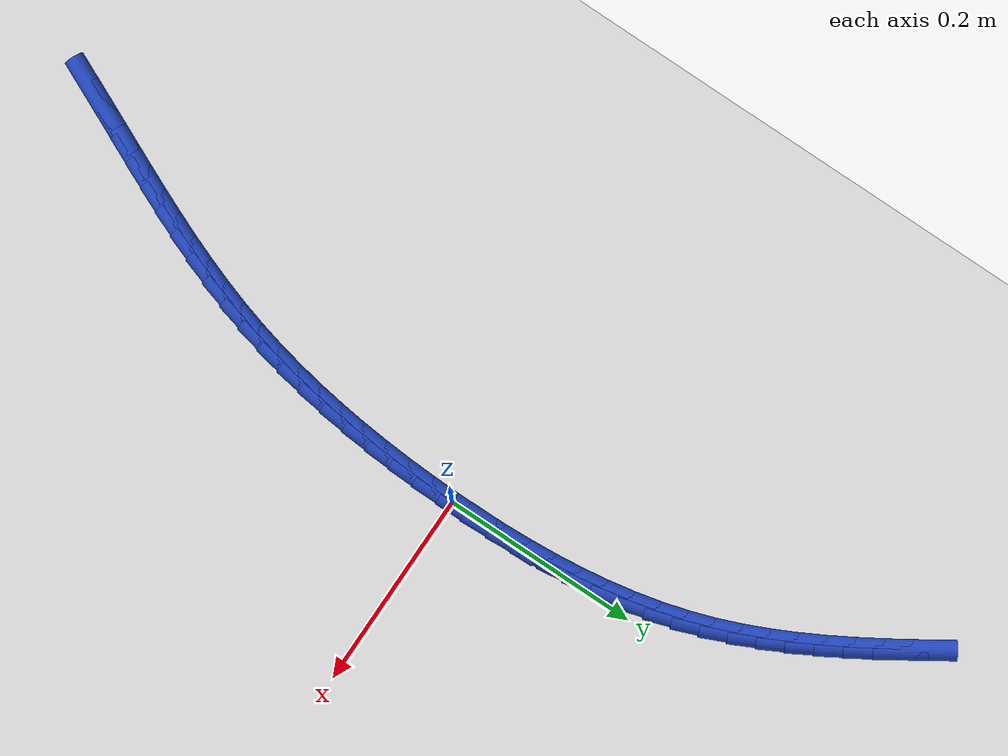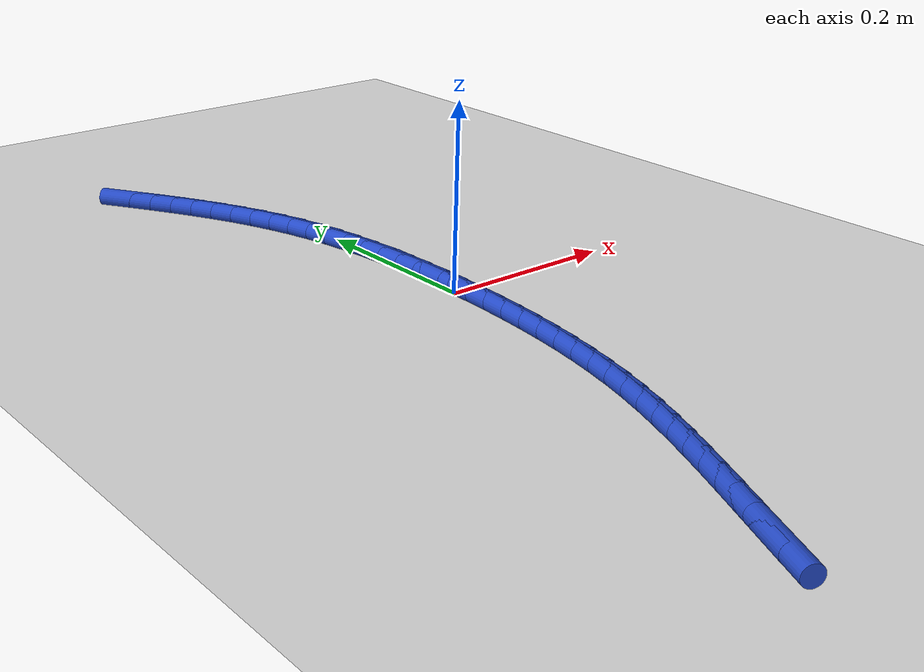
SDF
<sdf version="1.6">
 <world name="default">
  <model name="ground_plane">
   <static>1</static>
   <link name="link">
    <collision name="collision">
     <geometry><plane><normal>0 0 1</normal><size>100 100</size></plane></geometry>
     <surface><friction><ode><mu>100</mu><mu2>50</mu2></ode></friction></surface>
    </collision>
    <visual name="visual">
     <cast_shadows>0</cast_shadows>
     <geometry><plane><normal>0 0 1</normal><size>100 100</size></plane></geometry>
     <material>
      <script><uri>file://media/materials/scripts/gazebo.material</uri><name>Gazebo/WhiteGlow</name></script>
     </material>
    </visual>
   </link>
  </model>
  <model name="line">
   <link name="link_0">
    <pose>-7.37257477290143e-18 3.469446951953614e-17 0.01 0 1.57 1.570679695974858</pose>
    <collision name="collision">
     <geometry><cylinder><radius>0.01</radius><length>0.08</length></cylinder></geometry>
    </collision>
    <visual name="visual">
     <material>
      <script><name>Gazebo/Blue</name><uri>file://media/materials/scripts/gazebo.material</uri></script>
     </material>
     <geometry><cylinder><radius>0.01</radius><length>0.08</length></cylinder></geometry>
    </visual>
   </link>
   <link name="link_1">
    <pose>3.250097629793035e-06 0.027866541742451803 0.01 0 1.57 -1.5481850060267832</pose>
    <collision name="collision">
     <geometry><cylinder><radius>0.01</radius><length>0.08</length></cylinder></geometry>
    </collision>
    <visual name="visual">
     <material>
      <script><name>Gazebo/Blue</name><uri>file://media/materials/scripts/gazebo.material</uri></script>
     </material>
     <geometry><cylinder><radius>0.01</radius><length>0.08</length></cylinder></geometry>
    </visual>
   </link>
   <link name="link_2">
    <pose>-0.0006263920770606841 0.05570812036526805 0.01 0 1.57 -1.5224213287298272</pose>
    <collision name="collision">
     <geometry><cylinder><radius>0.01</radius><length>0.08</length></cylinder></geometry>
    </collision>
    <visual name="visual">
     <material>
      <script><name>Gazebo/Blue</name><uri>file://media/materials/scripts/gazebo.material</uri></script>
     </material>
     <geometry><cylinder><radius>0.01</radius><length>0.08</length></cylinder></geometry>
    </visual>
   </link>
   <link name="link_3">
    <pose>-0.0019702294024981047 0.08346603167380513 0.01 0 1.57 -1.4934822107434715</pose>
    <collision name="collision">
     <geometry><cylinder><radius>0.01</radius><length>0.08</length></cylinder></geometry>
    </collision>
    <visual name="visual">
     <material>
      <script><name>Gazebo/Blue</name><uri>file://media/materials/scripts/gazebo.material</uri></script>
     </material>
     <geometry><cylinder><radius>0.01</radius><length>0.08</length></cylinder></geometry>
    </visual>
   </link>
   <link name="link_4">
    <pose>-0.004109564757109139 0.11108157147341934 0.01 0 1.57 -1.461217150091305</pose>
    <collision name="collision">
     <geometry><cylinder><radius>0.01</radius><length>0.08</length></cylinder></geometry>
    </collision>
    <visual name="visual">
     <material>
      <script><name>Gazebo/Blue</name><uri>file://media/materials/scripts/gazebo.material</uri></script>
     </material>
     <geometry><cylinder><radius>0.01</radius><length>0.08</length></cylinder></geometry>
    </visual>
   </link>
   <link name="link_5">
    <pose>-0.007125701019320453 0.13849603556946702 0.01 0 1.57 -1.425472477816047</pose>
    <collision name="collision">
     <geometry><cylinder><radius>0.01</radius><length>0.08</length></cylinder></geometry>
    </collision>
    <visual name="visual">
     <material>
      <script><name>Gazebo/Blue</name><uri>file://media/materials/scripts/gazebo.material</uri></script>
     </material>
     <geometry><cylinder><radius>0.01</radius><length>0.08</length></cylinder></geometry>
    </visual>
   </link>
   <link name="link_6">
    <pose>-0.011099941067558721 0.16565071976730453 0.01 0 1.57 -1.3861014814704375</pose>
    <collision name="collision">
     <geometry><cylinder><radius>0.01</radius><length>0.08</length></cylinder></geometry>
    </collision>
    <visual name="visual">
     <material>
      <script><name>Gazebo/Blue</name><uri>file://media/materials/scripts/gazebo.material</uri></script>
     </material>
     <geometry><cylinder><radius>0.01</radius><length>0.08</length></cylinder></geometry>
    </visual>
   </link>
   <link name="link_7">
    <pose>-0.016113587780250602 0.19248691987228828 0.01 0 1.57 -1.3429775391351089</pose>
    <collision name="collision">
     <geometry><cylinder><radius>0.01</radius><length>0.08</length></cylinder></geometry>
    </collision>
    <visual name="visual">
     <material>
      <script><name>Gazebo/Blue</name><uri>file://media/materials/scripts/gazebo.material</uri></script>
     </material>
     <geometry><cylinder><radius>0.01</radius><length>0.08</length></cylinder></geometry>
    </visual>
   </link>
   <link name="link_8">
    <pose>-0.02224794403582276 0.21894593168977436 0.01 0 1.57 -1.296010558039404</pose>
    <collision name="collision">
     <geometry><cylinder><radius>0.01</radius><length>0.08</length></cylinder></geometry>
    </collision>
    <visual name="visual">
     <material>
      <script><name>Gazebo/Blue</name><uri>file://media/materials/scripts/gazebo.material</uri></script>
     </material>
     <geometry><cylinder><radius>0.01</radius><length>0.08</length></cylinder></geometry>
    </visual>
   </link>
   <link name="link_9">
    <pose>-0.029584312712701878 0.2449690510251194 0.01 0 1.57 -1.2453110199539499</pose>
    <collision name="collision">
     <geometry><cylinder><radius>0.01</radius><length>0.08</length></cylinder></geometry>
    </collision>
    <visual name="visual">
     <material>
      <script><name>Gazebo/Blue</name><uri>file://media/materials/scripts/gazebo.material</uri></script>
     </material>
     <geometry><cylinder><radius>0.01</radius><length>0.08</length></cylinder></geometry>
    </visual>
   </link>
   <link name="link_10">
    <pose>-0.03820055091153638 0.2704995345184524 0.01 0 1.57 -1.1950090191509404</pose>
    <collision name="collision">
     <geometry><cylinder><radius>0.01</radius><length>0.08</length></cylinder></geometry>
    </collision>
    <visual name="visual">
     <material>
      <script><name>Gazebo/Blue</name><uri>file://media/materials/scripts/gazebo.material</uri></script>
     </material>
     <geometry><cylinder><radius>0.01</radius><length>0.08</length></cylinder></geometry>
    </visual>
   </link>
   <link name="link_11">
    <pose>-0.048078137748480035 0.29553548311951794 0.01 0 1.57 -1.1498620533162103</pose>
    <collision name="collision">
     <geometry><cylinder><radius>0.01</radius><length>0.08</length></cylinder></geometry>
    </collision>
    <visual name="visual">
     <material>
      <script><name>Gazebo/Blue</name><uri>file://media/materials/scripts/gazebo.material</uri></script>
     </material>
     <geometry><cylinder><radius>0.01</radius><length>0.08</length></cylinder></geometry>
    </visual>
   </link>
   <link name="link_12">
    <pose>-0.059091575274804346 0.32013587354028866 0.01 0 1.57 -1.1102996658686988</pose>
    <collision name="collision">
     <geometry><cylinder><radius>0.01</radius><length>0.08</length></cylinder></geometry>
    </collision>
    <visual name="visual">
     <material>
      <script><name>Gazebo/Blue</name><uri>file://media/materials/scripts/gazebo.material</uri></script>
     </material>
     <geometry><cylinder><radius>0.01</radius><length>0.08</length></cylinder></geometry>
    </visual>
   </link>
   <link name="link_13">
    <pose>-0.0711097927112542 0.34436285373609155 0.01 0 1.57 -1.0763937316885046</pose>
    <collision name="collision">
     <geometry><cylinder><radius>0.01</radius><length>0.08</length></cylinder></geometry>
    </collision>
    <visual name="visual">
     <material>
      <script><name>Gazebo/Blue</name><uri>file://media/materials/scripts/gazebo.material</uri></script>
     </material>
     <geometry><cylinder><radius>0.01</radius><length>0.08</length></cylinder></geometry>
    </visual>
   </link>
   <link name="link_14">
    <pose>-0.08400171927857454 0.36827857166225364 0.01 0 1.57 -1.0481283188922614</pose>
    <collision name="collision">
     <geometry><cylinder><radius>0.01</radius><length>0.08</length></cylinder></geometry>
    </collision>
    <visual name="visual">
     <material>
      <script><name>Gazebo/Blue</name><uri>file://media/materials/scripts/gazebo.material</uri></script>
     </material>
     <geometry><cylinder><radius>0.01</radius><length>0.08</length></cylinder></geometry>
    </visual>
   </link>
   <link name="link_15">
    <pose>-0.0976362841975103 0.391945175274102 0.01 0 1.57 -1.025432645575937</pose>
    <collision name="collision">
     <geometry><cylinder><radius>0.01</radius><length>0.08</length></cylinder></geometry>
    </collision>
    <visual name="visual">
     <material>
      <script><name>Gazebo/Blue</name><uri>file://media/materials/scripts/gazebo.material</uri></script>
     </material>
     <geometry><cylinder><radius>0.01</radius><length>0.08</length></cylinder></geometry>
    </visual>
   </link>
   <link name="link_16">
    <pose>-0.11188241668880641 0.4154248125269636 0.01 0 1.57 -1.0082083457703979</pose>
    <collision name="collision">
     <geometry><cylinder><radius>0.01</radius><length>0.08</length></cylinder></geometry>
    </collision>
    <visual name="visual">
     <material>
      <script><name>Gazebo/Blue</name><uri>file://media/materials/scripts/gazebo.material</uri></script>
     </material>
     <geometry><cylinder><radius>0.01</radius><length>0.08</length></cylinder></geometry>
    </visual>
   </link>
   <link name="link_17">
    <pose>-0.12660904597320788 0.4387796313761657 0.01 0 1.57 -0.9963503303364913</pose>
    <collision name="collision">
     <geometry><cylinder><radius>0.01</radius><length>0.08</length></cylinder></geometry>
    </collision>
    <visual name="visual">
     <material>
      <script><name>Gazebo/Blue</name><uri>file://media/materials/scripts/gazebo.material</uri></script>
     </material>
     <geometry><cylinder><radius>0.01</radius><length>0.08</length></cylinder></geometry>
    </visual>
   </link>
   <link name="link_221">
    <pose>-0.13302760845341133 -0.49791887787934 0.01 0 1.57 1.1404557066543566</pose>
    <collision name="collision">
     <geometry><cylinder><radius>0.01</radius><length>0.08</length></cylinder></geometry>
    </collision>
    <visual name="visual">
     <material>
      <script><name>Gazebo/Blue</name><uri>file://media/materials/scripts/gazebo.material</uri></script>
     </material>
     <geometry><cylinder><radius>0.01</radius><length>0.08</length></cylinder></geometry>
    </visual>
   </link>
   <link name="link_222">
    <pose>-0.12117933413018381 -0.47210751956093466 0.01 0 1.57 1.137483190020406</pose>
    <collision name="collision">
     <geometry><cylinder><radius>0.01</radius><length>0.08</length></cylinder></geometry>
    </collision>
    <visual name="visual">
     <material>
      <script><name>Gazebo/Blue</name><uri>file://media/materials/scripts/gazebo.material</uri></script>
     </material>
     <geometry><cylinder><radius>0.01</radius><length>0.08</length></cylinder></geometry>
    </visual>
   </link>
   <link name="link_223">
    <pose>-0.10939652782849123 -0.4466387335961011 0.01 0 1.57 1.139208002158025</pose>
    <collision name="collision">
     <geometry><cylinder><radius>0.01</radius><length>0.08</length></cylinder></geometry>
    </collision>
    <visual name="visual">
     <material>
      <script><name>Gazebo/Blue</name><uri>file://media/materials/scripts/gazebo.material</uri></script>
     </material>
     <geometry><cylinder><radius>0.01</radius><length>0.08</length></cylinder></geometry>
    </visual>
   </link>
   <link name="link_224">
    <pose>-0.09778482800418992 -0.42142577037615875 0.01 0 1.57 1.1457793529224902</pose>
    <collision name="collision">
     <geometry><cylinder><radius>0.01</radius><length>0.08</length></cylinder></geometry>
    </collision>
    <visual name="visual">
     <material>
      <script><name>Gazebo/Blue</name><uri>file://media/materials/scripts/gazebo.material</uri></script>
     </material>
     <geometry><cylinder><radius>0.01</radius><length>0.08</length></cylinder></geometry>
    </visual>
   </link>
   <link name="link_225">
    <pose>-0.08644987311313528 -0.39638188029242527 0.01 0 1.57 1.157314202270658</pose>
    <collision name="collision">
     <geometry><cylinder><radius>0.01</radius><length>0.08</length></cylinder></geometry>
    </collision>
    <visual name="visual">
     <material>
      <script><name>Gazebo/Blue</name><uri>file://media/materials/scripts/gazebo.material</uri></script>
     </material>
     <geometry><cylinder><radius>0.01</radius><length>0.08</length></cylinder></geometry>
    </visual>
   </link>
   <link name="link_226">
    <pose>-0.07549730161118308 -0.37142031373621914 0.01 0 1.57 1.1738892634570577</pose>
    <collision name="collision">
     <geometry><cylinder><radius>0.01</radius><length>0.08</length></cylinder></geometry>
    </collision>
    <visual name="visual">
     <material>
      <script><name>Gazebo/Blue</name><uri>file://media/materials/scripts/gazebo.material</uri></script>
     </material>
     <geometry><cylinder><radius>0.01</radius><length>0.08</length></cylinder></geometry>
    </visual>
   </link>
   <link name="link_227">
    <pose>-0.06503275195418902 -0.3464543210988587 0.01 0 1.57 1.1955295234814274</pose>
    <collision name="collision">
     <geometry><cylinder><radius>0.01</radius><length>0.08</length></cylinder></geometry>
    </collision>
    <visual name="visual">
     <material>
      <script><name>Gazebo/Blue</name><uri>file://media/materials/scripts/gazebo.material</uri></script>
     </material>
     <geometry><cylinder><radius>0.01</radius><length>0.08</length></cylinder></geometry>
    </visual>
   </link>
   <link name="link_228">
    <pose>-0.05516186259800889 -0.3213971527716623 0.01 0 1.57 1.2221935782312872</pose>
    <collision name="collision">
     <geometry><cylinder><radius>0.01</radius><length>0.08</length></cylinder></geometry>
    </collision>
    <visual name="visual">
     <material>
      <script><name>Gazebo/Blue</name><uri>file://media/materials/scripts/gazebo.material</uri></script>
     </material>
     <geometry><cylinder><radius>0.01</radius><length>0.08</length></cylinder></geometry>
    </visual>
   </link>
   <link name="link_229">
    <pose>-0.04599027199849838 -0.2961620591459481 0.01 0 1.57 1.2537567945676336</pose>
    <collision name="collision">
     <geometry><cylinder><radius>0.01</radius><length>0.08</length></cylinder></geometry>
    </collision>
    <visual name="visual">
     <material>
      <script><name>Gazebo/Blue</name><uri>file://media/materials/scripts/gazebo.material</uri></script>
     </material>
     <geometry><cylinder><radius>0.01</radius><length>0.08</length></cylinder></geometry>
    </visual>
   </link>
   <link name="link_230">
    <pose>-0.03762361861151302 -0.27066229061303393 0.01 0 1.57 1.289821590863724</pose>
    <collision name="collision">
     <geometry><cylinder><radius>0.01</radius><length>0.08</length></cylinder></geometry>
    </collision>
    <visual name="visual">
     <material>
      <script><name>Gazebo/Blue</name><uri>file://media/materials/scripts/gazebo.material</uri></script>
     </material>
     <geometry><cylinder><radius>0.01</radius><length>0.08</length></cylinder></geometry>
    </visual>
   </link>
   <link name="link_231">
    <pose>-0.030163647770215764 -0.24481435752212966 0.01 0 1.57 1.3268222420346323</pose>
    <collision name="collision">
     <geometry><cylinder><radius>0.01</radius><length>0.08</length></cylinder></geometry>
    </collision>
    <visual name="visual">
     <material>
      <script><name>Gazebo/Blue</name><uri>file://media/materials/scripts/gazebo.material</uri></script>
     </material>
     <geometry><cylinder><radius>0.01</radius><length>0.08</length></cylinder></geometry>
    </visual>
   </link>
   <link name="link_232">
    <pose>-0.023637371718907438 -0.21859734896498306 0.01 0 1.57 1.36173918852688</pose>
    <collision name="collision">
     <geometry><cylinder><radius>0.01</radius><length>0.08</length></cylinder></geometry>
    </collision>
    <visual name="visual">
     <material>
      <script><name>Gazebo/Blue</name><uri>file://media/materials/scripts/gazebo.material</uri></script>
     </material>
     <geometry><cylinder><radius>0.01</radius><length>0.08</length></cylinder></geometry>
    </visual>
   </link>
   <link name="link_233">
    <pose>-0.01800447402272368 -0.19204673259527863 0.01 0 1.57 1.3945140988211946</pose>
    <collision name="collision">
     <geometry><cylinder><radius>0.01</radius><length>0.08</length></cylinder></geometry>
    </collision>
    <visual name="visual">
     <material>
      <script><name>Gazebo/Blue</name><uri>file://media/materials/scripts/gazebo.material</uri></script>
     </material>
     <geometry><cylinder><radius>0.01</radius><length>0.08</length></cylinder></geometry>
    </visual>
   </link>
   <link name="link_234">
    <pose>-0.01322223106151061 -0.16519999175521013 0.01 0 1.57 1.4252092696854275</pose>
    <collision name="collision">
     <geometry><cylinder><radius>0.01</radius><length>0.08</length></cylinder></geometry>
    </collision>
    <visual name="visual">
     <material>
      <script><name>Gazebo/Blue</name><uri>file://media/materials/scripts/gazebo.material</uri></script>
     </material>
     <geometry><cylinder><radius>0.01</radius><length>0.08</length></cylinder></geometry>
    </visual>
   </link>
   <link name="link_235">
    <pose>-0.009247919215114359 -0.13809460978697127 0.01 0 1.57 1.4538963124146806</pose>
    <collision name="collision">
     <geometry><cylinder><radius>0.01</radius><length>0.08</length></cylinder></geometry>
    </collision>
    <visual name="visual">
     <material>
      <script><name>Gazebo/Blue</name><uri>file://media/materials/scripts/gazebo.material</uri></script>
     </material>
     <geometry><cylinder><radius>0.01</radius><length>0.08</length></cylinder></geometry>
    </visual>
   </link>
   <link name="link_236">
    <pose>-0.00603881486338106 -0.1107680700327556 0.01 0 1.57 1.4806523014836162</pose>
    <collision name="collision">
     <geometry><cylinder><radius>0.01</radius><length>0.08</length></cylinder></geometry>
    </collision>
    <visual name="visual">
     <material>
      <script><name>Gazebo/Blue</name><uri>file://media/materials/scripts/gazebo.material</uri></script>
     </material>
     <geometry><cylinder><radius>0.01</radius><length>0.08</length></cylinder></geometry>
    </visual>
   </link>
   <link name="link_237">
    <pose>-0.0035521943861568472 -0.08325785583475706 0.01 0 1.57 1.505556610698639</pose>
    <collision name="collision">
     <geometry><cylinder><radius>0.01</radius><length>0.08</length></cylinder></geometry>
    </collision>
    <visual name="visual">
     <material>
      <script><name>Gazebo/Blue</name><uri>file://media/materials/scripts/gazebo.material</uri></script>
     </material>
     <geometry><cylinder><radius>0.01</radius><length>0.08</length></cylinder></geometry>
    </visual>
   </link>
   <link name="link_238">
    <pose>-0.0017453341632878083 -0.05560145053516848 0.01 0 1.57 1.52868837255818</pose>
    <collision name="collision">
     <geometry><cylinder><radius>0.01</radius><length>0.08</length></cylinder></geometry>
    </collision>
    <visual name="visual">
     <material>
      <script><name>Gazebo/Blue</name><uri>file://media/materials/scripts/gazebo.material</uri></script>
     </material>
     <geometry><cylinder><radius>0.01</radius><length>0.08</length></cylinder></geometry>
    </visual>
   </link>
   <link name="link_239">
    <pose>-0.0005755105746201705 -0.0278363374761851 0.01 0 1.57 1.550124476699049</pose>
    <collision name="collision">
     <geometry><cylinder><radius>0.01</radius><length>0.08</length></cylinder></geometry>
    </collision>
    <visual name="visual">
     <material>
      <script><name>Gazebo/Blue</name><uri>file://media/materials/scripts/gazebo.material</uri></script>
     </material>
     <geometry><cylinder><radius>0.01</radius><length>0.08</length></cylinder></geometry>
    </visual>
   </link>
   <link name="link_240">
    <pose>-8.239936510889834e-18 1.3183898417423734e-16 0.01 0 1.57 1.5699380165175</pose>
    <collision name="collision">
     <geometry><cylinder><radius>0.01</radius><length>0.08</length></cylinder></geometry>
    </collision>
    <visual name="visual">
     <material>
      <script><name>Gazebo/Blue</name><uri>file://media/materials/scripts/gazebo.material</uri></script>
     </material>
     <geometry><cylinder><radius>0.01</radius><length>0.08</length></cylinder></geometry>
    </visual>
   </link>
   <link name="link_241">
    <pose>2.392118072654841e-05 0.0278700785511935 0.01 0 1.57 -1.5533955589955117</pose>
    <collision name="collision">
     <geometry><cylinder><radius>0.01</radius><length>0.08</length></cylinder></geometry>
    </collision>
    <visual name="visual">
     <material>
      <script><name>Gazebo/Blue</name><uri>file://media/materials/scripts/gazebo.material</uri></script>
     </material>
     <geometry><cylinder><radius>0.01</radius><length>0.08</length></cylinder></geometry>
    </visual>
   </link>
   <link name="link_242">
    <pose>-0.0004610234122866333 0.05573641483520127 0.01 0 1.57 -1.5625250215801418</pose>
    <collision name="collision">
     <geometry><cylinder><radius>0.01</radius><length>0.08</length></cylinder></geometry>
    </collision>
    <visual name="visual">
     <material>
      <script><name>Gazebo/Blue</name><uri>file://media/materials/scripts/gazebo.material</uri></script>
     </material>
     <geometry><cylinder><radius>0.01</radius><length>0.08</length></cylinder></geometry>
    </visual>
   </link>
  </model>
 </world>
</sdf>
